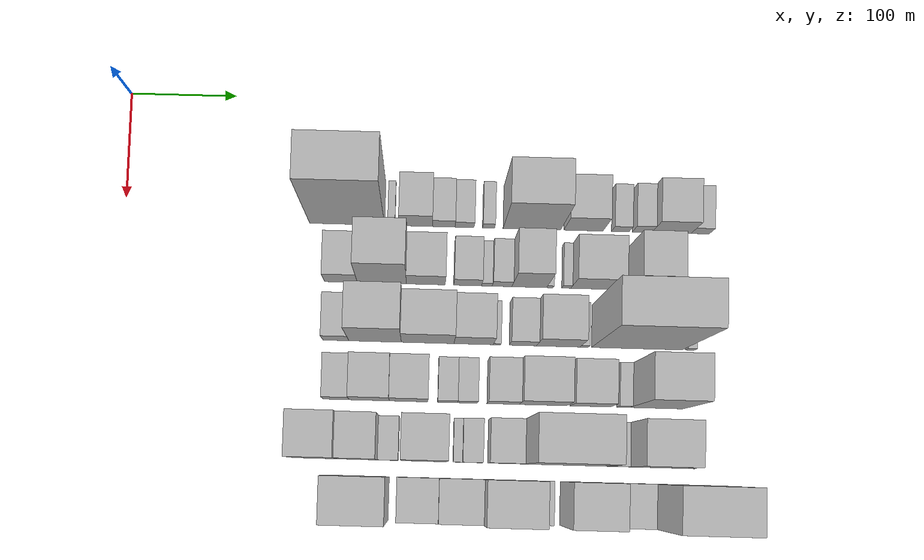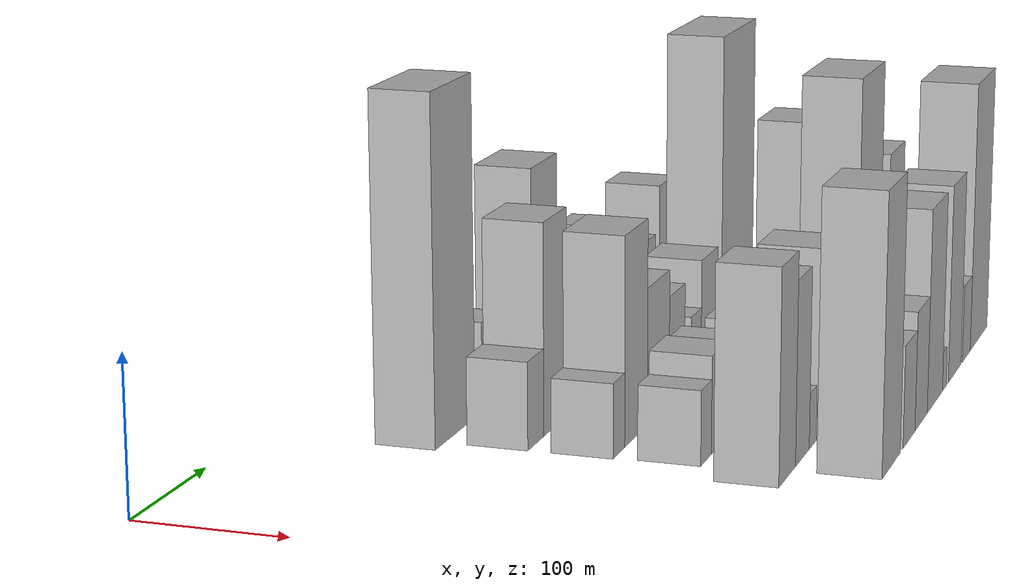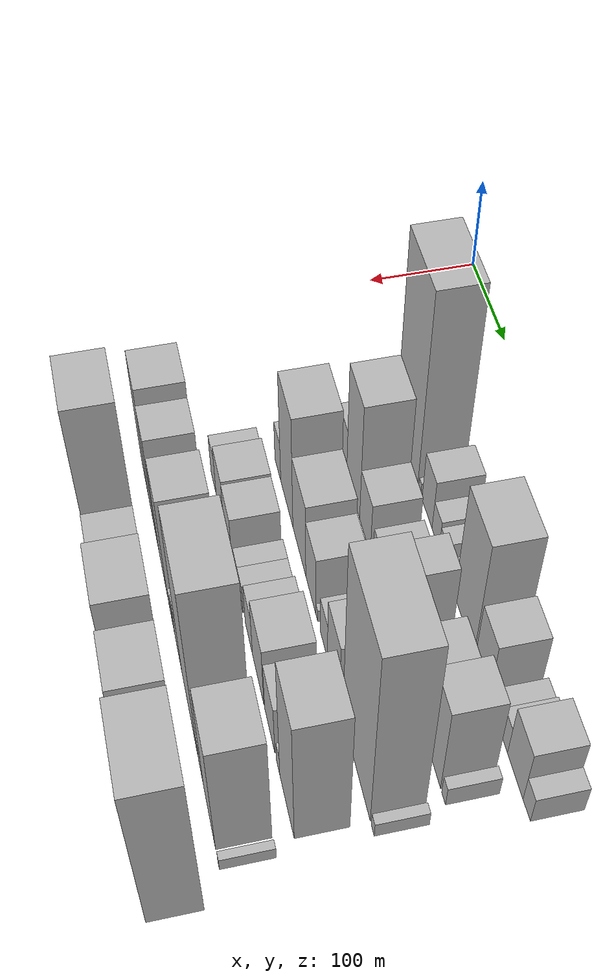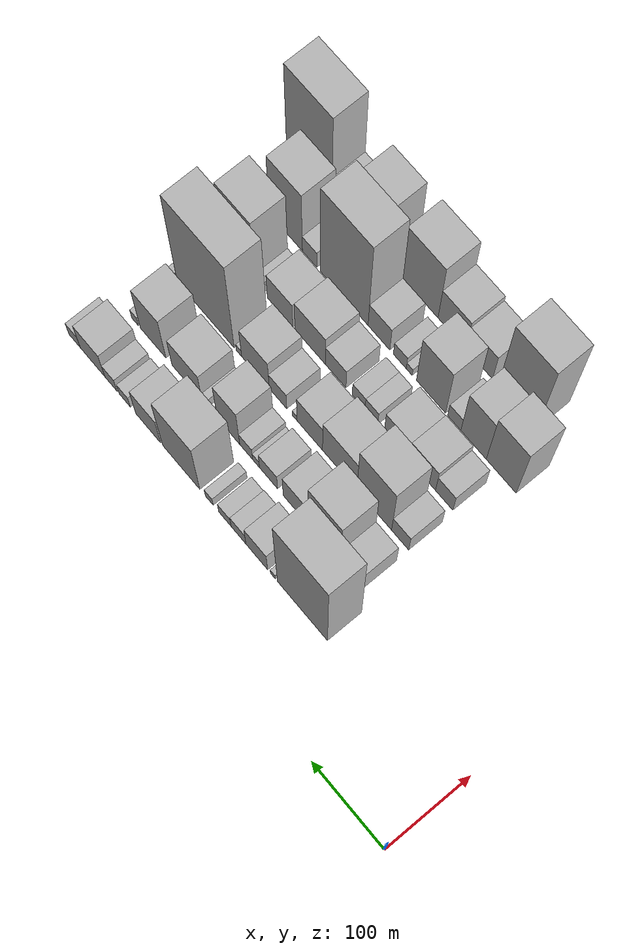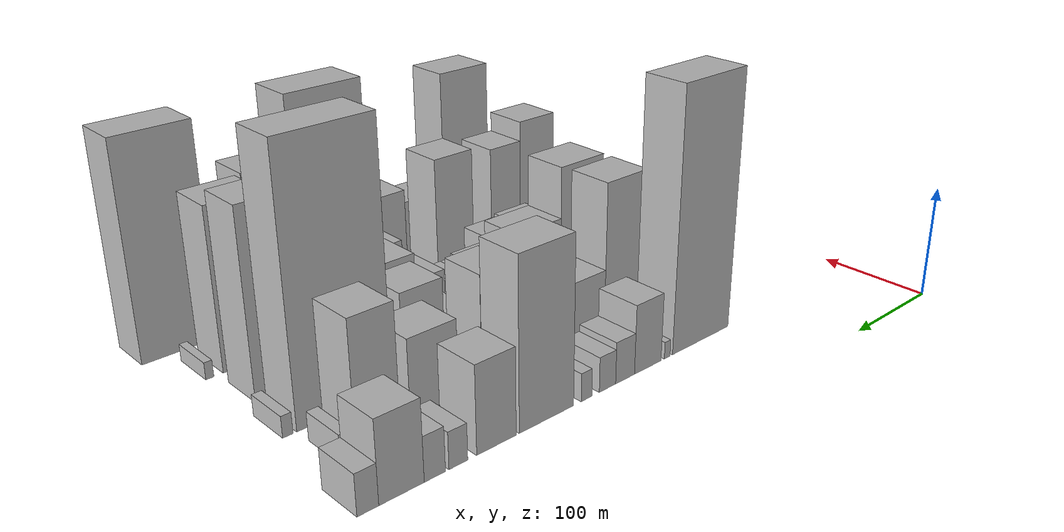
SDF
<sdf version="1.6">
 <world name="default">
  <model name="building_31">
   <static>1</static>
   <pose>100.0000 208.8867 0 0.000000 0.000000 0.000000</pose>
   <link name="link">
    <pose>0 0 112.50 0 0 0</pose>
    <collision name="collision"><geometry><box><size>40.0000 70.5624 225.0000</size></box></geometry></collision>
    <visual name="visual">
     <cast_shadows>0</cast_shadows>
     <geometry><box><size>40.0000 70.5624 225.0000</size></box></geometry>
     <material>
      <script>
       <uri>model://HANNAS_wall/materials/scripts</uri>
       <uri>model://HANNAS_wall/materials/textures</uri>
       <name>vrc/HANNAS_wall</name>
      </script>
     </material>
    </visual>
   </link>
  </model>
  <model name="building_32">
   <static>1</static>
   <pose>100.0000 250.5901 0 0.000000 0.000000 0.000000</pose>
   <link name="link">
    <pose>0 0 7.50 0 0 0</pose>
    <collision name="collision"><geometry><box><size>40.0000 6.8445 15.0000</size></box></geometry></collision>
    <visual name="visual">
     <cast_shadows>0</cast_shadows>
     <geometry><box><size>40.0000 6.8445 15.0000</size></box></geometry>
     <material>
      <script>
       <uri>model://HANNAS_wall/materials/scripts</uri>
       <uri>model://HANNAS_wall/materials/textures</uri>
       <name>vrc/HANNAS_wall</name>
      </script>
     </material>
    </visual>
   </link>
  </model>
  <model name="building_33">
   <static>1</static>
   <pose>100.0000 273.5113 0 0.000000 0.000000 0.000000</pose>
   <link name="link">
    <pose>0 0 30.00 0 0 0</pose>
    <collision name="collision"><geometry><box><size>40.0000 30.9979 60.0000</size></box></geometry></collision>
    <visual name="visual">
     <cast_shadows>0</cast_shadows>
     <geometry><box><size>40.0000 30.9979 60.0000</size></box></geometry>
     <material>
      <script>
       <uri>model://HANNAS_wall/materials/scripts</uri>
       <uri>model://HANNAS_wall/materials/textures</uri>
       <name>vrc/HANNAS_wall</name>
      </script>
     </material>
    </visual>
   </link>
  </model>
  <model name="building_34">
   <static>1</static>
   <pose>100.0000 299.6634 0 0.000000 0.000000 0.000000</pose>
   <link name="link">
    <pose>0 0 18.00 0 0 0</pose>
    <collision name="collision"><geometry><box><size>40.0000 21.3063 36.0000</size></box></geometry></collision>
    <visual name="visual">
     <cast_shadows>0</cast_shadows>
     <geometry><box><size>40.0000 21.3063 36.0000</size></box></geometry>
     <material>
      <script>
       <uri>model://HANNAS_wall/materials/scripts</uri>
       <uri>model://HANNAS_wall/materials/textures</uri>
       <name>vrc/HANNAS_wall</name>
      </script>
     </material>
    </visual>
   </link>
  </model>
  <model name="building_35">
   <static>1</static>
   <pose>100.0000 319.2772 0 0.000000 0.000000 0.000000</pose>
   <link name="link">
    <pose>0 0 15.00 0 0 0</pose>
    <collision name="collision"><geometry><box><size>40.0000 17.9213 30.0000</size></box></geometry></collision>
    <visual name="visual">
     <cast_shadows>0</cast_shadows>
     <geometry><box><size>40.0000 17.9213 30.0000</size></box></geometry>
     <material>
      <script>
       <uri>model://HANNAS_wall/materials/scripts</uri>
       <uri>model://HANNAS_wall/materials/textures</uri>
       <name>vrc/HANNAS_wall</name>
      </script>
     </material>
    </visual>
   </link>
  </model>
  <model name="building_36">
   <static>1</static>
   <pose>100.0000 341.9096 0 0.000000 0.000000 0.000000</pose>
   <link name="link">
    <pose>0 0 12.00 0 0 0</pose>
    <collision name="collision"><geometry><box><size>40.0000 11.3436 24.0000</size></box></geometry></collision>
    <visual name="visual">
     <cast_shadows>0</cast_shadows>
     <geometry><box><size>40.0000 11.3436 24.0000</size></box></geometry>
     <material>
      <script>
       <uri>model://HANNAS_wall/materials/scripts</uri>
       <uri>model://HANNAS_wall/materials/textures</uri>
       <name>vrc/HANNAS_wall</name>
      </script>
     </material>
    </visual>
   </link>
  </model>
  <model name="building_37">
   <static>1</static>
   <pose>100.0000 382.7256 0 0.000000 0.000000 0.000000</pose>
   <link name="link">
    <pose>0 0 70.50 0 0 0</pose>
    <collision name="collision"><geometry><box><size>40.0000 54.2883 141.0000</size></box></geometry></collision>
    <visual name="visual">
     <cast_shadows>0</cast_shadows>
     <geometry><box><size>40.0000 54.2883 141.0000</size></box></geometry>
     <material>
      <script>
       <uri>model://HANNAS_wall/materials/scripts</uri>
       <uri>model://HANNAS_wall/materials/textures</uri>
       <name>vrc/HANNAS_wall</name>
      </script>
     </material>
    </visual>
   </link>
  </model>
  <model name="building_38">
   <static>1</static>
   <pose>100.0000 431.2567 0 0.000000 0.000000 0.000000</pose>
   <link name="link">
    <pose>0 0 36.00 0 0 0</pose>
    <collision name="collision"><geometry><box><size>40.0000 36.7739 72.0000</size></box></geometry></collision>
    <visual name="visual">
     <cast_shadows>0</cast_shadows>
     <geometry><box><size>40.0000 36.7739 72.0000</size></box></geometry>
     <material>
      <script>
       <uri>model://HANNAS_wall/materials/scripts</uri>
       <uri>model://HANNAS_wall/materials/textures</uri>
       <name>vrc/HANNAS_wall</name>
      </script>
     </material>
    </visual>
   </link>
  </model>
  <model name="building_39">
   <static>1</static>
   <pose>100.0000 465.9500 0 0.000000 0.000000 0.000000</pose>
   <link name="link">
    <pose>0 0 15.00 0 0 0</pose>
    <collision name="collision"><geometry><box><size>40.0000 16.6127 30.0000</size></box></geometry></collision>
    <visual name="visual">
     <cast_shadows>0</cast_shadows>
     <geometry><box><size>40.0000 16.6127 30.0000</size></box></geometry>
     <material>
      <script>
       <uri>model://HANNAS_wall/materials/scripts</uri>
       <uri>model://HANNAS_wall/materials/textures</uri>
       <name>vrc/HANNAS_wall</name>
      </script>
     </material>
    </visual>
   </link>
  </model>
  <model name="building_40">
   <static>1</static>
   <pose>100.0000 486.3141 0 0.000000 0.000000 0.000000</pose>
   <link name="link">
    <pose>0 0 18.00 0 0 0</pose>
    <collision name="collision"><geometry><box><size>40.0000 18.1154 36.0000</size></box></geometry></collision>
    <visual name="visual">
     <cast_shadows>0</cast_shadows>
     <geometry><box><size>40.0000 18.1154 36.0000</size></box></geometry>
     <material>
      <script>
       <uri>model://HANNAS_wall/materials/scripts</uri>
       <uri>model://HANNAS_wall/materials/textures</uri>
       <name>vrc/HANNAS_wall</name>
      </script>
     </material>
    </visual>
   </link>
  </model>
  <model name="building_41">
   <static>1</static>
   <pose>100.0000 513.9225 0 0.000000 0.000000 0.000000</pose>
   <link name="link">
    <pose>0 0 33.00 0 0 0</pose>
    <collision name="collision"><geometry><box><size>40.0000 37.1014 66.0000</size></box></geometry></collision>
    <visual name="visual">
     <cast_shadows>0</cast_shadows>
     <geometry><box><size>40.0000 37.1014 66.0000</size></box></geometry>
     <material>
      <script>
       <uri>model://HANNAS_wall/materials/scripts</uri>
       <uri>model://HANNAS_wall/materials/textures</uri>
       <name>vrc/HANNAS_wall</name>
      </script>
     </material>
    </visual>
   </link>
  </model>
  <model name="building_42">
   <static>1</static>
   <pose>100.0000 541.0261 0 0.000000 0.000000 0.000000</pose>
   <link name="link">
    <pose>0 0 16.50 0 0 0</pose>
    <collision name="collision"><geometry><box><size>40.0000 17.1058 33.0000</size></box></geometry></collision>
    <visual name="visual">
     <cast_shadows>0</cast_shadows>
     <geometry><box><size>40.0000 17.1058 33.0000</size></box></geometry>
     <material>
      <script>
       <uri>model://HANNAS_wall/materials/scripts</uri>
       <uri>model://HANNAS_wall/materials/textures</uri>
       <name>vrc/HANNAS_wall</name>
      </script>
     </material>
    </visual>
   </link>
  </model>
  <model name="building_88">
   <static>1</static>
   <pose>155.0000 204.9838 0 0.000000 0.000000 0.000000</pose>
   <link name="link">
    <pose>0 0 28.50 0 0 0</pose>
    <collision name="collision"><geometry><box><size>40.0000 30.7913 57.0000</size></box></geometry></collision>
    <visual name="visual">
     <cast_shadows>0</cast_shadows>
     <geometry><box><size>40.0000 30.7913 57.0000</size></box></geometry>
     <material>
      <script>
       <uri>model://HANNAS_wall/materials/scripts</uri>
       <uri>model://HANNAS_wall/materials/textures</uri>
       <name>vrc/HANNAS_wall</name>
      </script>
     </material>
    </visual>
   </link>
  </model>
  <model name="building_89">
   <static>1</static>
   <pose>155.0000 243.2962 0 0.000000 0.000000 0.000000</pose>
   <link name="link">
    <pose>0 0 69.00 0 0 0</pose>
    <collision name="collision"><geometry><box><size>40.0000 45.8333 138.0000</size></box></geometry></collision>
    <visual name="visual">
     <cast_shadows>0</cast_shadows>
     <geometry><box><size>40.0000 45.8333 138.0000</size></box></geometry>
     <material>
      <script>
       <uri>model://HANNAS_wall/materials/scripts</uri>
       <uri>model://HANNAS_wall/materials/textures</uri>
       <name>vrc/HANNAS_wall</name>
      </script>
     </material>
    </visual>
   </link>
  </model>
  <model name="building_90">
   <static>1</static>
   <pose>155.0000 284.3411 0 0.000000 0.000000 0.000000</pose>
   <link name="link">
    <pose>0 0 31.50 0 0 0</pose>
    <collision name="collision"><geometry><box><size>40.0000 36.2566 63.0000</size></box></geometry></collision>
    <visual name="visual">
     <cast_shadows>0</cast_shadows>
     <geometry><box><size>40.0000 36.2566 63.0000</size></box></geometry>
     <material>
      <script>
       <uri>model://HANNAS_wall/materials/scripts</uri>
       <uri>model://HANNAS_wall/materials/textures</uri>
       <name>vrc/HANNAS_wall</name>
      </script>
     </material>
    </visual>
   </link>
  </model>
  <model name="building_91">
   <static>1</static>
   <pose>155.0000 323.5023 0 0.000000 0.000000 0.000000</pose>
   <link name="link">
    <pose>0 0 22.50 0 0 0</pose>
    <collision name="collision"><geometry><box><size>40.0000 26.0657 45.0000</size></box></geometry></collision>
    <visual name="visual">
     <cast_shadows>0</cast_shadows>
     <geometry><box><size>40.0000 26.0657 45.0000</size></box></geometry>
     <material>
      <script>
       <uri>model://HANNAS_wall/materials/scripts</uri>
       <uri>model://HANNAS_wall/materials/textures</uri>
       <name>vrc/HANNAS_wall</name>
      </script>
     </material>
    </visual>
   </link>
  </model>
  <model name="building_92">
   <static>1</static>
   <pose>155.0000 341.5179 0 0.000000 0.000000 0.000000</pose>
   <link name="link">
    <pose>0 0 10.50 0 0 0</pose>
    <collision name="collision"><geometry><box><size>40.0000 9.9654 21.0000</size></box></geometry></collision>
    <visual name="visual">
     <cast_shadows>0</cast_shadows>
     <geometry><box><size>40.0000 9.9654 21.0000</size></box></geometry>
     <material>
      <script>
       <uri>model://HANNAS_wall/materials/scripts</uri>
       <uri>model://HANNAS_wall/materials/textures</uri>
       <name>vrc/HANNAS_wall</name>
      </script>
     </material>
    </visual>
   </link>
  </model>
  <model name="building_93">
   <static>1</static>
   <pose>155.0000 355.7737 0 0.000000 0.000000 0.000000</pose>
   <link name="link">
    <pose>0 0 18.00 0 0 0</pose>
    <collision name="collision"><geometry><box><size>40.0000 18.5463 36.0000</size></box></geometry></collision>
    <visual name="visual">
     <cast_shadows>0</cast_shadows>
     <geometry><box><size>40.0000 18.5463 36.0000</size></box></geometry>
     <material>
      <script>
       <uri>model://HANNAS_wall/materials/scripts</uri>
       <uri>model://HANNAS_wall/materials/textures</uri>
       <name>vrc/HANNAS_wall</name>
      </script>
     </material>
    </visual>
   </link>
  </model>
  <model name="building_94">
   <static>1</static>
   <pose>155.0000 381.3293 0 0.000000 0.000000 0.000000</pose>
   <link name="link">
    <pose>0 0 51.00 0 0 0</pose>
    <collision name="collision"><geometry><box><size>40.0000 32.5648 102.0000</size></box></geometry></collision>
    <visual name="visual">
     <cast_shadows>0</cast_shadows>
     <geometry><box><size>40.0000 32.5648 102.0000</size></box></geometry>
     <material>
      <script>
       <uri>model://HANNAS_wall/materials/scripts</uri>
       <uri>model://HANNAS_wall/materials/textures</uri>
       <name>vrc/HANNAS_wall</name>
      </script>
     </material>
    </visual>
   </link>
  </model>
  <model name="building_95">
   <static>1</static>
   <pose>155.0000 400.6858 0 0.000000 0.000000 0.000000</pose>
   <link name="link">
    <pose>0 0 7.50 0 0 0</pose>
    <collision name="collision"><geometry><box><size>40.0000 6.1483 15.0000</size></box></geometry></collision>
    <visual name="visual">
     <cast_shadows>0</cast_shadows>
     <geometry><box><size>40.0000 6.1483 15.0000</size></box></geometry>
     <material>
      <script>
       <uri>model://HANNAS_wall/materials/scripts</uri>
       <uri>model://HANNAS_wall/materials/textures</uri>
       <name>vrc/HANNAS_wall</name>
      </script>
     </material>
    </visual>
   </link>
  </model>
  <model name="building_96">
   <static>1</static>
   <pose>155.0000 416.0415 0 0.000000 0.000000 0.000000</pose>
   <link name="link">
    <pose>0 0 10.50 0 0 0</pose>
    <collision name="collision"><geometry><box><size>40.0000 8.5631 21.0000</size></box></geometry></collision>
    <visual name="visual">
     <cast_shadows>0</cast_shadows>
     <geometry><box><size>40.0000 8.5631 21.0000</size></box></geometry>
     <material>
      <script>
       <uri>model://HANNAS_wall/materials/scripts</uri>
       <uri>model://HANNAS_wall/materials/textures</uri>
       <name>vrc/HANNAS_wall</name>
      </script>
     </material>
    </visual>
   </link>
  </model>
  <model name="building_97">
   <static>1</static>
   <pose>155.0000 442.4586 0 0.000000 0.000000 0.000000</pose>
   <link name="link">
    <pose>0 0 37.50 0 0 0</pose>
    <collision name="collision"><geometry><box><size>40.0000 44.2710 75.0000</size></box></geometry></collision>
    <visual name="visual">
     <cast_shadows>0</cast_shadows>
     <geometry><box><size>40.0000 44.2710 75.0000</size></box></geometry>
     <material>
      <script>
       <uri>model://HANNAS_wall/materials/scripts</uri>
       <uri>model://HANNAS_wall/materials/textures</uri>
       <name>vrc/HANNAS_wall</name>
      </script>
     </material>
    </visual>
   </link>
  </model>
  <model name="building_98">
   <static>1</static>
   <pose>155.0000 492.6209 0 0.000000 0.000000 0.000000</pose>
   <link name="link">
    <pose>0 0 54.00 0 0 0</pose>
    <collision name="collision"><geometry><box><size>40.0000 38.0536 108.0000</size></box></geometry></collision>
    <visual name="visual">
     <cast_shadows>0</cast_shadows>
     <geometry><box><size>40.0000 38.0536 108.0000</size></box></geometry>
     <material>
      <script>
       <uri>model://HANNAS_wall/materials/scripts</uri>
       <uri>model://HANNAS_wall/materials/textures</uri>
       <name>vrc/HANNAS_wall</name>
      </script>
     </material>
    </visual>
   </link>
  </model>
  <model name="building_99">
   <static>1</static>
   <pose>155.0000 519.6479 0 0.000000 0.000000 0.000000</pose>
   <link name="link">
    <pose>0 0 12.00 0 0 0</pose>
    <collision name="collision"><geometry><box><size>40.0000 10.0002 24.0000</size></box></geometry></collision>
    <visual name="visual">
     <cast_shadows>0</cast_shadows>
     <geometry><box><size>40.0000 10.0002 24.0000</size></box></geometry>
     <material>
      <script>
       <uri>model://HANNAS_wall/materials/scripts</uri>
       <uri>model://HANNAS_wall/materials/textures</uri>
       <name>vrc/HANNAS_wall</name>
      </script>
     </material>
    </visual>
   </link>
  </model>
  <model name="building_143">
   <static>1</static>
   <pose>210.0000 202.1014 0 0.000000 0.000000 0.000000</pose>
   <link name="link">
    <pose>0 0 24.00 0 0 0</pose>
    <collision name="collision"><geometry><box><size>40.0000 24.0944 48.0000</size></box></geometry></collision>
    <visual name="visual">
     <cast_shadows>0</cast_shadows>
     <geometry><box><size>40.0000 24.0944 48.0000</size></box></geometry>
     <material>
      <script>
       <uri>model://HANNAS_wall/materials/scripts</uri>
       <uri>model://HANNAS_wall/materials/textures</uri>
       <name>vrc/HANNAS_wall</name>
      </script>
     </material>
    </visual>
   </link>
  </model>
  <model name="building_144">
   <static>1</static>
   <pose>210.0000 238.6227 0 0.000000 0.000000 0.000000</pose>
   <link name="link">
    <pose>0 0 67.50 0 0 0</pose>
    <collision name="collision"><geometry><box><size>40.0000 48.9481 135.0000</size></box></geometry></collision>
    <visual name="visual">
     <cast_shadows>0</cast_shadows>
     <geometry><box><size>40.0000 48.9481 135.0000</size></box></geometry>
     <material>
      <script>
       <uri>model://HANNAS_wall/materials/scripts</uri>
       <uri>model://HANNAS_wall/materials/textures</uri>
       <name>vrc/HANNAS_wall</name>
      </script>
     </material>
    </visual>
   </link>
  </model>
  <model name="building_145">
   <static>1</static>
   <pose>210.0000 287.6231 0 0.000000 0.000000 0.000000</pose>
   <link name="link">
    <pose>0 0 45.00 0 0 0</pose>
    <collision name="collision"><geometry><box><size>40.0000 49.0526 90.0000</size></box></geometry></collision>
    <visual name="visual">
     <cast_shadows>0</cast_shadows>
     <geometry><box><size>40.0000 49.0526 90.0000</size></box></geometry>
     <material>
      <script>
       <uri>model://HANNAS_wall/materials/scripts</uri>
       <uri>model://HANNAS_wall/materials/textures</uri>
       <name>vrc/HANNAS_wall</name>
      </script>
     </material>
    </visual>
   </link>
  </model>
  <model name="building_146">
   <static>1</static>
   <pose>210.0000 330.4530 0 0.000000 0.000000 0.000000</pose>
   <link name="link">
    <pose>0 0 36.00 0 0 0</pose>
    <collision name="collision"><geometry><box><size>40.0000 36.6073 72.0000</size></box></geometry></collision>
    <visual name="visual">
     <cast_shadows>0</cast_shadows>
     <geometry><box><size>40.0000 36.6073 72.0000</size></box></geometry>
     <material>
      <script>
       <uri>model://HANNAS_wall/materials/scripts</uri>
       <uri>model://HANNAS_wall/materials/textures</uri>
       <name>vrc/HANNAS_wall</name>
      </script>
     </material>
    </visual>
   </link>
  </model>
  <model name="building_147">
   <static>1</static>
   <pose>210.0000 352.2342 0 0.000000 0.000000 0.000000</pose>
   <link name="link">
    <pose>0 0 7.50 0 0 0</pose>
    <collision name="collision"><geometry><box><size>40.0000 6.9552 15.0000</size></box></geometry></collision>
    <visual name="visual">
     <cast_shadows>0</cast_shadows>
     <geometry><box><size>40.0000 6.9552 15.0000</size></box></geometry>
     <material>
      <script>
       <uri>model://HANNAS_wall/materials/scripts</uri>
       <uri>model://HANNAS_wall/materials/textures</uri>
       <name>vrc/HANNAS_wall</name>
      </script>
     </material>
    </visual>
   </link>
  </model>
  <model name="building_148">
   <static>1</static>
   <pose>210.0000 376.3900 0 0.000000 0.000000 0.000000</pose>
   <link name="link">
    <pose>0 0 22.50 0 0 0</pose>
    <collision name="collision"><geometry><box><size>40.0000 25.3565 45.0000</size></box></geometry></collision>
    <visual name="visual">
     <cast_shadows>0</cast_shadows>
     <geometry><box><size>40.0000 25.3565 45.0000</size></box></geometry>
     <material>
      <script>
       <uri>model://HANNAS_wall/materials/scripts</uri>
       <uri>model://HANNAS_wall/materials/textures</uri>
       <name>vrc/HANNAS_wall</name>
      </script>
     </material>
    </visual>
   </link>
  </model>
  <model name="building_149">
   <static>1</static>
   <pose>210.0000 409.3406 0 0.000000 0.000000 0.000000</pose>
   <link name="link">
    <pose>0 0 39.00 0 0 0</pose>
    <collision name="collision"><geometry><box><size>40.0000 40.5446 78.0000</size></box></geometry></collision>
    <visual name="visual">
     <cast_shadows>0</cast_shadows>
     <geometry><box><size>40.0000 40.5446 78.0000</size></box></geometry>
     <material>
      <script>
       <uri>model://HANNAS_wall/materials/scripts</uri>
       <uri>model://HANNAS_wall/materials/textures</uri>
       <name>vrc/HANNAS_wall</name>
      </script>
     </material>
    </visual>
   </link>
  </model>
  <model name="building_150">
   <static>1</static>
   <pose>210.0000 433.5672 0 0.000000 0.000000 0.000000</pose>
   <link name="link">
    <pose>0 0 9.00 0 0 0</pose>
    <collision name="collision"><geometry><box><size>40.0000 7.9087 18.0000</size></box></geometry></collision>
    <visual name="visual">
     <cast_shadows>0</cast_shadows>
     <geometry><box><size>40.0000 7.9087 18.0000</size></box></geometry>
     <material>
      <script>
       <uri>model://HANNAS_wall/materials/scripts</uri>
       <uri>model://HANNAS_wall/materials/textures</uri>
       <name>vrc/HANNAS_wall</name>
      </script>
     </material>
    </visual>
   </link>
  </model>
  <model name="building_151">
   <static>1</static>
   <pose>210.0000 482.7558 0 0.000000 0.000000 0.000000</pose>
   <link name="link">
    <pose>0 0 111.00 0 0 0</pose>
    <collision name="collision"><geometry><box><size>40.0000 84.4683 222.0000</size></box></geometry></collision>
    <visual name="visual">
     <cast_shadows>0</cast_shadows>
     <geometry><box><size>40.0000 84.4683 222.0000</size></box></geometry>
     <material>
      <script>
       <uri>model://HANNAS_wall/materials/scripts</uri>
       <uri>model://HANNAS_wall/materials/textures</uri>
       <name>vrc/HANNAS_wall</name>
      </script>
     </material>
    </visual>
   </link>
  </model>
  <model name="building_152">
   <static>1</static>
   <pose>210.0000 532.2826 0 0.000000 0.000000 0.000000</pose>
   <link name="link">
    <pose>0 0 9.00 0 0 0</pose>
    <collision name="collision"><geometry><box><size>40.0000 8.5852 18.0000</size></box></geometry></collision>
    <visual name="visual">
     <cast_shadows>0</cast_shadows>
     <geometry><box><size>40.0000 8.5852 18.0000</size></box></geometry>
     <material>
      <script>
       <uri>model://HANNAS_wall/materials/scripts</uri>
       <uri>model://HANNAS_wall/materials/textures</uri>
       <name>vrc/HANNAS_wall</name>
      </script>
     </material>
    </visual>
   </link>
  </model>
  <model name="building_191">
   <static>1</static>
   <pose>265.0000 204.5822 0 0.000000 0.000000 0.000000</pose>
   <link name="link">
    <pose>0 0 24.00 0 0 0</pose>
    <collision name="collision"><geometry><box><size>40.0000 24.3509 48.0000</size></box></geometry></collision>
    <visual name="visual">
     <cast_shadows>0</cast_shadows>
     <geometry><box><size>40.0000 24.3509 48.0000</size></box></geometry>
     <material>
      <script>
       <uri>model://HANNAS_wall/materials/scripts</uri>
       <uri>model://HANNAS_wall/materials/textures</uri>
       <name>vrc/HANNAS_wall</name>
      </script>
     </material>
    </visual>
   </link>
  </model>
  <model name="building_192">
   <static>1</static>
   <pose>265.0000 235.3309 0 0.000000 0.000000 0.000000</pose>
   <link name="link">
    <pose>0 0 31.50 0 0 0</pose>
    <collision name="collision"><geometry><box><size>40.0000 37.1465 63.0000</size></box></geometry></collision>
    <visual name="visual">
     <cast_shadows>0</cast_shadows>
     <geometry><box><size>40.0000 37.1465 63.0000</size></box></geometry>
     <material>
      <script>
       <uri>model://HANNAS_wall/materials/scripts</uri>
       <uri>model://HANNAS_wall/materials/textures</uri>
       <name>vrc/HANNAS_wall</name>
      </script>
     </material>
    </visual>
   </link>
  </model>
  <model name="building_193">
   <static>1</static>
   <pose>265.0000 271.6104 0 0.000000 0.000000 0.000000</pose>
   <link name="link">
    <pose>0 0 30.00 0 0 0</pose>
    <collision name="collision"><geometry><box><size>40.0000 35.4126 60.0000</size></box></geometry></collision>
    <visual name="visual">
     <cast_shadows>0</cast_shadows>
     <geometry><box><size>40.0000 35.4126 60.0000</size></box></geometry>
     <material>
      <script>
       <uri>model://HANNAS_wall/materials/scripts</uri>
       <uri>model://HANNAS_wall/materials/textures</uri>
       <name>vrc/HANNAS_wall</name>
      </script>
     </material>
    </visual>
   </link>
  </model>
  <model name="building_194">
   <static>1</static>
   <pose>265.0000 307.4884 0 0.000000 0.000000 0.000000</pose>
   <link name="link">
    <pose>0 0 18.00 0 0 0</pose>
    <collision name="collision"><geometry><box><size>40.0000 18.3434 36.0000</size></box></geometry></collision>
    <visual name="visual">
     <cast_shadows>0</cast_shadows>
     <geometry><box><size>40.0000 18.3434 36.0000</size></box></geometry>
     <material>
      <script>
       <uri>model://HANNAS_wall/materials/scripts</uri>
       <uri>model://HANNAS_wall/materials/textures</uri>
       <name>vrc/HANNAS_wall</name>
      </script>
     </material>
    </visual>
   </link>
  </model>
  <model name="building_195">
   <static>1</static>
   <pose>265.0000 325.8974 0 0.000000 0.000000 0.000000</pose>
   <link name="link">
    <pose>0 0 18.00 0 0 0</pose>
    <collision name="collision"><geometry><box><size>40.0000 18.4746 36.0000</size></box></geometry></collision>
    <visual name="visual">
     <cast_shadows>0</cast_shadows>
     <geometry><box><size>40.0000 18.4746 36.0000</size></box></geometry>
     <material>
      <script>
       <uri>model://HANNAS_wall/materials/scripts</uri>
       <uri>model://HANNAS_wall/materials/textures</uri>
       <name>vrc/HANNAS_wall</name>
      </script>
     </material>
    </visual>
   </link>
  </model>
  <model name="building_196">
   <static>1</static>
   <pose>265.0000 359.0673 0 0.000000 0.000000 0.000000</pose>
   <link name="link">
    <pose>0 0 25.50 0 0 0</pose>
    <collision name="collision"><geometry><box><size>40.0000 29.8653 51.0000</size></box></geometry></collision>
    <visual name="visual">
     <cast_shadows>0</cast_shadows>
     <geometry><box><size>40.0000 29.8653 51.0000</size></box></geometry>
     <material>
      <script>
       <uri>model://HANNAS_wall/materials/scripts</uri>
       <uri>model://HANNAS_wall/materials/textures</uri>
       <name>vrc/HANNAS_wall</name>
      </script>
     </material>
    </visual>
   </link>
  </model>
  <model name="building_197">
   <static>1</static>
   <pose>265.0000 396.1224 0 0.000000 0.000000 0.000000</pose>
   <link name="link">
    <pose>0 0 37.50 0 0 0</pose>
    <collision name="collision"><geometry><box><size>40.0000 44.2448 75.0000</size></box></geometry></collision>
    <visual name="visual">
     <cast_shadows>0</cast_shadows>
     <geometry><box><size>40.0000 44.2448 75.0000</size></box></geometry>
     <material>
      <script>
       <uri>model://HANNAS_wall/materials/scripts</uri>
       <uri>model://HANNAS_wall/materials/textures</uri>
       <name>vrc/HANNAS_wall</name>
      </script>
     </material>
    </visual>
   </link>
  </model>
  <model name="building_198">
   <static>1</static>
   <pose>265.0000 439.9815 0 0.000000 0.000000 0.000000</pose>
   <link name="link">
    <pose>0 0 31.50 0 0 0</pose>
    <collision name="collision"><geometry><box><size>40.0000 37.4735 63.0000</size></box></geometry></collision>
    <visual name="visual">
     <cast_shadows>0</cast_shadows>
     <geometry><box><size>40.0000 37.4735 63.0000</size></box></geometry>
     <material>
      <script>
       <uri>model://HANNAS_wall/materials/scripts</uri>
       <uri>model://HANNAS_wall/materials/textures</uri>
       <name>vrc/HANNAS_wall</name>
      </script>
     </material>
    </visual>
   </link>
  </model>
  <model name="building_199">
   <static>1</static>
   <pose>265.0000 470.6994 0 0.000000 0.000000 0.000000</pose>
   <link name="link">
    <pose>0 0 13.50 0 0 0</pose>
    <collision name="collision"><geometry><box><size>40.0000 11.9622 27.0000</size></box></geometry></collision>
    <visual name="visual">
     <cast_shadows>0</cast_shadows>
     <geometry><box><size>40.0000 11.9622 27.0000</size></box></geometry>
     <material>
      <script>
       <uri>model://HANNAS_wall/materials/scripts</uri>
       <uri>model://HANNAS_wall/materials/textures</uri>
       <name>vrc/HANNAS_wall</name>
      </script>
     </material>
    </visual>
   </link>
  </model>
  <model name="building_200">
   <static>1</static>
   <pose>265.0000 501.4519 0 0.000000 0.000000 0.000000</pose>
   <link name="link">
    <pose>0 0 79.50 0 0 0</pose>
    <collision name="collision"><geometry><box><size>40.0000 49.5429 159.0000</size></box></geometry></collision>
    <visual name="visual">
     <cast_shadows>0</cast_shadows>
     <geometry><box><size>40.0000 49.5429 159.0000</size></box></geometry>
     <material>
      <script>
       <uri>model://HANNAS_wall/materials/scripts</uri>
       <uri>model://HANNAS_wall/materials/textures</uri>
       <name>vrc/HANNAS_wall</name>
      </script>
     </material>
    </visual>
   </link>
  </model>
  <model name="building_246">
   <static>1</static>
   <pose>320.0000 188.3703 0 0.000000 0.000000 0.000000</pose>
   <link name="link">
    <pose>0 0 67.50 0 0 0</pose>
    <collision name="collision"><geometry><box><size>40.0000 41.7325 135.0000</size></box></geometry></collision>
    <visual name="visual">
     <cast_shadows>0</cast_shadows>
     <geometry><box><size>40.0000 41.7325 135.0000</size></box></geometry>
     <material>
      <script>
       <uri>model://HANNAS_wall/materials/scripts</uri>
       <uri>model://HANNAS_wall/materials/textures</uri>
       <name>vrc/HANNAS_wall</name>
      </script>
     </material>
    </visual>
   </link>
  </model>
  <model name="building_247">
   <static>1</static>
   <pose>320.0000 227.0634 0 0.000000 0.000000 0.000000</pose>
   <link name="link">
    <pose>0 0 58.50 0 0 0</pose>
    <collision name="collision"><geometry><box><size>40.0000 35.6537 117.0000</size></box></geometry></collision>
    <visual name="visual">
     <cast_shadows>0</cast_shadows>
     <geometry><box><size>40.0000 35.6537 117.0000</size></box></geometry>
     <material>
      <script>
       <uri>model://HANNAS_wall/materials/scripts</uri>
       <uri>model://HANNAS_wall/materials/textures</uri>
       <name>vrc/HANNAS_wall</name>
      </script>
     </material>
    </visual>
   </link>
  </model>
  <model name="building_248">
   <static>1</static>
   <pose>320.0000 254.2129 0 0.000000 0.000000 0.000000</pose>
   <link name="link">
    <pose>0 0 18.00 0 0 0</pose>
    <collision name="collision"><geometry><box><size>40.0000 18.6452 36.0000</size></box></geometry></collision>
    <visual name="visual">
     <cast_shadows>0</cast_shadows>
     <geometry><box><size>40.0000 18.6452 36.0000</size></box></geometry>
     <material>
      <script>
       <uri>model://HANNAS_wall/materials/scripts</uri>
       <uri>model://HANNAS_wall/materials/textures</uri>
       <name>vrc/HANNAS_wall</name>
      </script>
     </material>
    </visual>
   </link>
  </model>
  <model name="building_249">
   <static>1</static>
   <pose>320.0000 287.2322 0 0.000000 0.000000 0.000000</pose>
   <link name="link">
    <pose>0 0 61.50 0 0 0</pose>
    <collision name="collision"><geometry><box><size>40.0000 41.3934 123.0000</size></box></geometry></collision>
    <visual name="visual">
     <cast_shadows>0</cast_shadows>
     <geometry><box><size>40.0000 41.3934 123.0000</size></box></geometry>
     <material>
      <script>
       <uri>model://HANNAS_wall/materials/scripts</uri>
       <uri>model://HANNAS_wall/materials/textures</uri>
       <name>vrc/HANNAS_wall</name>
      </script>
     </material>
    </visual>
   </link>
  </model>
  <model name="building_250">
   <static>1</static>
   <pose>320.0000 318.1843 0 0.000000 0.000000 0.000000</pose>
   <link name="link">
    <pose>0 0 9.00 0 0 0</pose>
    <collision name="collision"><geometry><box><size>40.0000 8.5107 18.0000</size></box></geometry></collision>
    <visual name="visual">
     <cast_shadows>0</cast_shadows>
     <geometry><box><size>40.0000 8.5107 18.0000</size></box></geometry>
     <material>
      <script>
       <uri>model://HANNAS_wall/materials/scripts</uri>
       <uri>model://HANNAS_wall/materials/textures</uri>
       <name>vrc/HANNAS_wall</name>
      </script>
     </material>
    </visual>
   </link>
  </model>
  <model name="building_251">
   <static>1</static>
   <pose>320.0000 331.7378 0 0.000000 0.000000 0.000000</pose>
   <link name="link">
    <pose>0 0 16.50 0 0 0</pose>
    <collision name="collision"><geometry><box><size>40.0000 18.5963 33.0000</size></box></geometry></collision>
    <visual name="visual">
     <cast_shadows>0</cast_shadows>
     <geometry><box><size>40.0000 18.5963 33.0000</size></box></geometry>
     <material>
      <script>
       <uri>model://HANNAS_wall/materials/scripts</uri>
       <uri>model://HANNAS_wall/materials/textures</uri>
       <name>vrc/HANNAS_wall</name>
      </script>
     </material>
    </visual>
   </link>
  </model>
  <model name="building_252">
   <static>1</static>
   <pose>320.0000 361.7767 0 0.000000 0.000000 0.000000</pose>
   <link name="link">
    <pose>0 0 30.00 0 0 0</pose>
    <collision name="collision"><geometry><box><size>40.0000 31.4815 60.0000</size></box></geometry></collision>
    <visual name="visual">
     <cast_shadows>0</cast_shadows>
     <geometry><box><size>40.0000 31.4815 60.0000</size></box></geometry>
     <material>
      <script>
       <uri>model://HANNAS_wall/materials/scripts</uri>
       <uri>model://HANNAS_wall/materials/textures</uri>
       <name>vrc/HANNAS_wall</name>
      </script>
     </material>
    </visual>
   </link>
  </model>
  <model name="building_253">
   <static>1</static>
   <pose>320.0000 412.3592 0 0.000000 0.000000 0.000000</pose>
   <link name="link">
    <pose>0 0 105.00 0 0 0</pose>
    <collision name="collision"><geometry><box><size>40.0000 69.6836 210.0000</size></box></geometry></collision>
    <visual name="visual">
     <cast_shadows>0</cast_shadows>
     <geometry><box><size>40.0000 69.6836 210.0000</size></box></geometry>
     <material>
      <script>
       <uri>model://HANNAS_wall/materials/scripts</uri>
       <uri>model://HANNAS_wall/materials/textures</uri>
       <name>vrc/HANNAS_wall</name>
      </script>
     </material>
    </visual>
   </link>
  </model>
  <model name="building_254">
   <static>1</static>
   <pose>320.0000 462.8226 0 0.000000 0.000000 0.000000</pose>
   <link name="link">
    <pose>0 0 19.50 0 0 0</pose>
    <collision name="collision"><geometry><box><size>40.0000 21.2431 39.0000</size></box></geometry></collision>
    <visual name="visual">
     <cast_shadows>0</cast_shadows>
     <geometry><box><size>40.0000 21.2431 39.0000</size></box></geometry>
     <material>
      <script>
       <uri>model://HANNAS_wall/materials/scripts</uri>
       <uri>model://HANNAS_wall/materials/textures</uri>
       <name>vrc/HANNAS_wall</name>
      </script>
     </material>
    </visual>
   </link>
  </model>
  <model name="building_255">
   <static>1</static>
   <pose>320.0000 497.9093 0 0.000000 0.000000 0.000000</pose>
   <link name="link">
    <pose>0 0 70.50 0 0 0</pose>
    <collision name="collision"><geometry><box><size>40.0000 48.9304 141.0000</size></box></geometry></collision>
    <visual name="visual">
     <cast_shadows>0</cast_shadows>
     <geometry><box><size>40.0000 48.9304 141.0000</size></box></geometry>
     <material>
      <script>
       <uri>model://HANNAS_wall/materials/scripts</uri>
       <uri>model://HANNAS_wall/materials/textures</uri>
       <name>vrc/HANNAS_wall</name>
      </script>
     </material>
    </visual>
   </link>
  </model>
  <model name="building_256">
   <static>1</static>
   <pose>320.0000 533.8361 0 0.000000 0.000000 0.000000</pose>
   <link name="link">
    <pose>0 0 7.50 0 0 0</pose>
    <collision name="collision"><geometry><box><size>40.0000 6.9232 15.0000</size></box></geometry></collision>
    <visual name="visual">
     <cast_shadows>0</cast_shadows>
     <geometry><box><size>40.0000 6.9232 15.0000</size></box></geometry>
     <material>
      <script>
       <uri>model://HANNAS_wall/materials/scripts</uri>
       <uri>model://HANNAS_wall/materials/textures</uri>
       <name>vrc/HANNAS_wall</name>
      </script>
     </material>
    </visual>
   </link>
  </model>
  <model name="building_295">
   <static>1</static>
   <pose>375.0000 228.3548 0 0.000000 0.000000 0.000000</pose>
   <link name="link">
    <pose>0 0 88.50 0 0 0</pose>
    <collision name="collision"><geometry><box><size>40.0000 54.3085 177.0000</size></box></geometry></collision>
    <visual name="visual">
     <cast_shadows>0</cast_shadows>
     <geometry><box><size>40.0000 54.3085 177.0000</size></box></geometry>
     <material>
      <script>
       <uri>model://HANNAS_wall/materials/scripts</uri>
       <uri>model://HANNAS_wall/materials/textures</uri>
       <name>vrc/HANNAS_wall</name>
      </script>
     </material>
    </visual>
   </link>
  </model>
  <model name="building_296">
   <static>1</static>
   <pose>375.0000 282.2852 0 0.000000 0.000000 0.000000</pose>
   <link name="link">
    <pose>0 0 33.00 0 0 0</pose>
    <collision name="collision"><geometry><box><size>40.0000 37.5524 66.0000</size></box></geometry></collision>
    <visual name="visual">
     <cast_shadows>0</cast_shadows>
     <geometry><box><size>40.0000 37.5524 66.0000</size></box></geometry>
     <material>
      <script>
       <uri>model://HANNAS_wall/materials/scripts</uri>
       <uri>model://HANNAS_wall/materials/textures</uri>
       <name>vrc/HANNAS_wall</name>
      </script>
     </material>
    </visual>
   </link>
  </model>
  <model name="building_297">
   <static>1</static>
   <pose>375.0000 321.1041 0 0.000000 0.000000 0.000000</pose>
   <link name="link">
    <pose>0 0 39.00 0 0 0</pose>
    <collision name="collision"><geometry><box><size>40.0000 40.0854 78.0000</size></box></geometry></collision>
    <visual name="visual">
     <cast_shadows>0</cast_shadows>
     <geometry><box><size>40.0000 40.0854 78.0000</size></box></geometry>
     <material>
      <script>
       <uri>model://HANNAS_wall/materials/scripts</uri>
       <uri>model://HANNAS_wall/materials/textures</uri>
       <name>vrc/HANNAS_wall</name>
      </script>
     </material>
    </visual>
   </link>
  </model>
  <model name="building_298">
   <static>1</static>
   <pose>375.0000 367.1841 0 0.000000 0.000000 0.000000</pose>
   <link name="link">
    <pose>0 0 67.50 0 0 0</pose>
    <collision name="collision"><geometry><box><size>40.0000 52.0746 135.0000</size></box></geometry></collision>
    <visual name="visual">
     <cast_shadows>0</cast_shadows>
     <geometry><box><size>40.0000 52.0746 135.0000</size></box></geometry>
     <material>
      <script>
       <uri>model://HANNAS_wall/materials/scripts</uri>
       <uri>model://HANNAS_wall/materials/textures</uri>
       <name>vrc/HANNAS_wall</name>
      </script>
     </material>
    </visual>
   </link>
  </model>
  <model name="building_299">
   <static>1</static>
   <pose>375.0000 399.9320 0 0.000000 0.000000 0.000000</pose>
   <link name="link">
    <pose>0 0 13.50 0 0 0</pose>
    <collision name="collision"><geometry><box><size>40.0000 13.4213 27.0000</size></box></geometry></collision>
    <visual name="visual">
     <cast_shadows>0</cast_shadows>
     <geometry><box><size>40.0000 13.4213 27.0000</size></box></geometry>
     <material>
      <script>
       <uri>model://HANNAS_wall/materials/scripts</uri>
       <uri>model://HANNAS_wall/materials/textures</uri>
       <name>vrc/HANNAS_wall</name>
      </script>
     </material>
    </visual>
   </link>
  </model>
  <model name="building_300">
   <static>1</static>
   <pose>375.0000 437.1010 0 0.000000 0.000000 0.000000</pose>
   <link name="link">
    <pose>0 0 67.50 0 0 0</pose>
    <collision name="collision"><geometry><box><size>40.0000 46.9166 135.0000</size></box></geometry></collision>
    <visual name="visual">
     <cast_shadows>0</cast_shadows>
     <geometry><box><size>40.0000 46.9166 135.0000</size></box></geometry>
     <material>
      <script>
       <uri>model://HANNAS_wall/materials/scripts</uri>
       <uri>model://HANNAS_wall/materials/textures</uri>
       <name>vrc/HANNAS_wall</name>
      </script>
     </material>
    </visual>
   </link>
  </model>
  <model name="building_301">
   <static>1</static>
   <pose>375.0000 480.6821 0 0.000000 0.000000 0.000000</pose>
   <link name="link">
    <pose>0 0 27.00 0 0 0</pose>
    <collision name="collision"><geometry><box><size>40.0000 30.2457 54.0000</size></box></geometry></collision>
    <visual name="visual">
     <cast_shadows>0</cast_shadows>
     <geometry><box><size>40.0000 30.2457 54.0000</size></box></geometry>
     <material>
      <script>
       <uri>model://HANNAS_wall/materials/scripts</uri>
       <uri>model://HANNAS_wall/materials/textures</uri>
       <name>vrc/HANNAS_wall</name>
      </script>
     </material>
    </visual>
   </link>
  </model>
  <model name="building_302">
   <static>1</static>
   <pose>375.0000 529.5300 0 0.000000 0.000000 0.000000</pose>
   <link name="link">
    <pose>0 0 94.50 0 0 0</pose>
    <collision name="collision"><geometry><box><size>40.0000 67.4500 189.0000</size></box></geometry></collision>
    <visual name="visual">
     <cast_shadows>0</cast_shadows>
     <geometry><box><size>40.0000 67.4500 189.0000</size></box></geometry>
     <material>
      <script>
       <uri>model://HANNAS_wall/materials/scripts</uri>
       <uri>model://HANNAS_wall/materials/textures</uri>
       <name>vrc/HANNAS_wall</name>
      </script>
     </material>
    </visual>
   </link>
  </model>
 </world>
</sdf>
